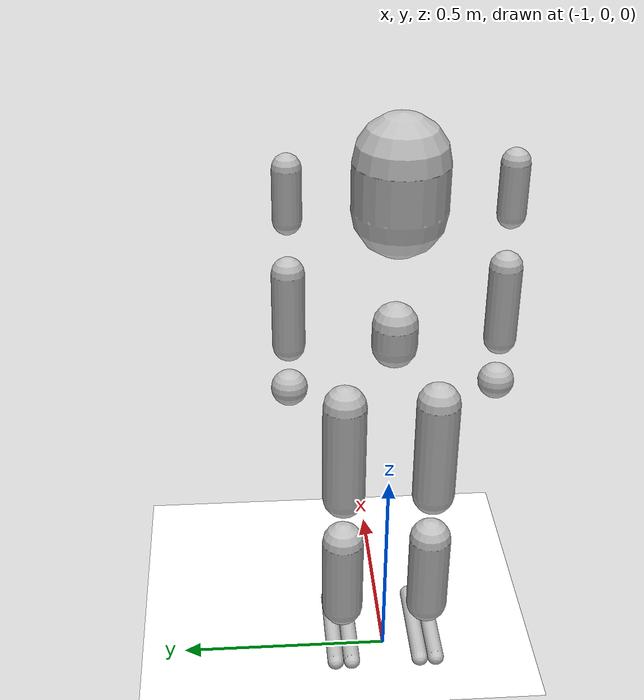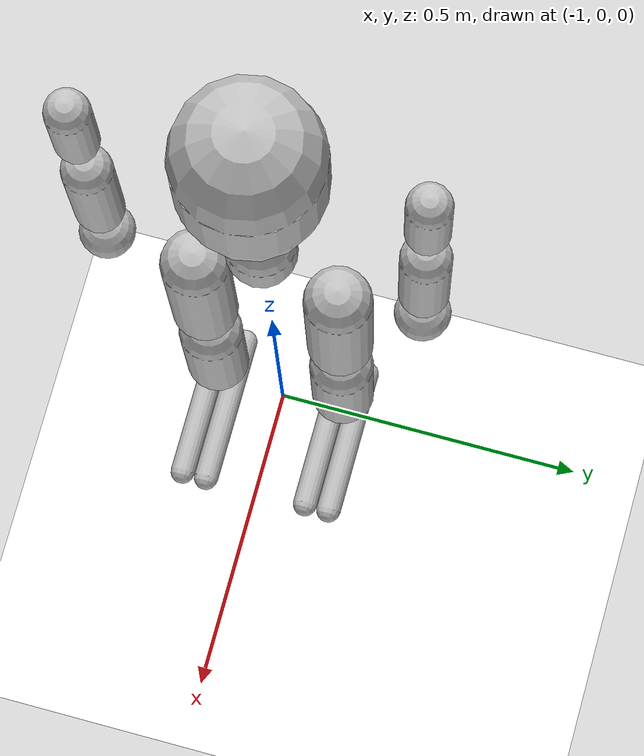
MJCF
<?xml version='1.0' encoding='UTF-8'?>
<mujoco model="GR1T1">
  <compiler angle="radian"/>
  <worldbody>
    <body name="base" pos="-1.0 0 0.94">
      <joint name="base_x" type="slide" axis="1 0 0" damping="30"/>
      <joint name="base_y" type="slide" axis="0 1 0" damping="30"/>
      <joint name="base_yaw" type="hinge" axis="0 0 1" damping="30"/>
      <inertial pos="-0.0508888 0.000109183 -0.0455794" quat="0.706855 0.707166 0.0123661 -0.0109307" mass="6.45117" diaginertia="0.0149302 0.0127972 0.00640923"/>
      <body name="l_thigh_roll" pos="-0.047999 0.105 -0.057493">
        <inertial pos="0.04163 3.4568e-05 -0.0021382" quat="0.575529 0.581908 -0.40597 0.406619" mass="1.1437" diaginertia="0.00117548 0.00100413 0.000943892"/>
        <joint name="l_hip_roll" pos="0 0 0" axis="1 0 1.221e-05" range="-0.09 0.79" actuatorfrcrange="-100 100"/>
        <body name="l_thigh_yaw" pos="0.048 0 -0.030499">
          <inertial pos="0.00018348 0.046462 -0.10389" quat="0.704251 -0.0226446 -0.0453749 0.708138" mass="3.9888" diaginertia="0.0163385 0.0100158 0.00924336"/>
          <joint name="l_hip_yaw" pos="0 0 0" axis="1.2209e-05 6.8349e-05 1" range="-0.7 0.7" actuatorfrcrange="-82.5 82.5"/>
          <body name="l_thigh_pitch" pos="0 0 -0.11">
            <inertial pos="0.0028493 -0.021688 -0.090886" quat="0.707411 -0.0125435 -0.0111264 0.706604" mass="6.369" diaginertia="0.0532352 0.0425096 0.0134363"/>
            <joint name="l_hip_pitch" pos="0 0 0" axis="0 1 -6.8349e-05" range="-1.75 0.7" actuatorfrcrange="-160 160"/>
            <geom size="0.05 0.125" pos="0 0 -0.15" type="capsule" rgba="0.75294 0.75294 0.75294 1"/>
            <body name="l_shank_pitch" pos="0 2.4606e-05 -0.36">
              <inertial pos="0.0024312 -2.9945e-05 -0.11554" quat="0.692137 0.00134576 0.00140217 0.721764" mass="2.1895" diaginertia="0.0162703 0.016117 0.00113627"/>
              <joint name="l_knee_pitch" pos="0 0 0" axis="0 1 6.8349e-05" range="-0.09 1.92" actuatorfrcrange="-160 160"/>
              <geom size="0.05 0.1" pos="0 0 -0.15" type="capsule" rgba="0.75294 0.75294 0.75294 1"/>
              <body name="l_foot_pitch" pos="0 2.3239e-05 -0.34">
                <inertial pos="1.748e-11 4.3804e-11 0" quat="1 3.42295e-05 -6.07362e-06 -2.07897e-10" mass="0.080335" diaginertia="5.1022e-06 4.3976e-06 4.188e-06"/>
                <joint name="l_ankle_pitch" pos="0 0 0" axis="0 1 6.8349e-05" range="-1.05 0.52" actuatorfrcrange="-8 8"/>
                <body name="l_foot_roll">
                  <inertial pos="0.039446 0.00035757 -0.038101" quat="-0.00087198 0.709539 -0.00177594 0.704664" mass="0.584" diaginertia="0.00271032 0.0024027 0.000369145"/>
                  <joint name="l_ankle_roll" pos="0 0 0" axis="1 0 1.221e-05" range="-0.44 0.44" actuatorfrcrange="-3 3"/>
                  <geom name="l_foot_1" size="0.02 0.12" pos="0.05 0.02 -0.035" quat="0.707105 0 0.707108 0" type="capsule" rgba="0.75294 0.75294 0.75294 1"/>
                  <geom name="l_foot_2" size="0.02 0.12" pos="0.05 -0.02 -0.035" quat="0.707105 0 0.707108 0" type="capsule" rgba="0.75294 0.75294 0.75294 1"/>
                </body>
              </body>
            </body>
          </body>
        </body>
      </body>
      <body name="r_thigh_roll" pos="-0.047999 -0.105 -0.057508">
        <inertial pos="0.0416295 3.45678e-05 -0.00213824" quat="0.57555 0.581927 -0.405942 0.406589" mass="1.14367" diaginertia="0.00117548 0.00100417 0.000943891"/>
        <joint name="r_hip_roll" pos="0 0 0" axis="1 0 1.221e-05" range="-0.79 0.09" actuatorfrcrange="-100 100"/>
        <body name="r_thigh_yaw" pos="0.048 0 -0.030499">
          <inertial pos="-0.00159762 -0.0464482 -0.103899" quat="0.709186 -0.0420808 -0.0194028 0.703497" mass="3.98882" diaginertia="0.0163388 0.0100142 0.00924469"/>
          <joint name="r_hip_yaw" pos="0 0 0" axis="1.2209e-05 6.8349e-05 1" range="-0.7 0.7" actuatorfrcrange="-82.5 82.5"/>
          <body name="r_thigh_pitch" pos="0 0 -0.11">
            <inertial pos="0.002842 0.0217009 -0.0919987" quat="0.706586 -0.0113774 -0.0126258 0.707423" mass="6.36895" diaginertia="0.0532349 0.0424818 0.0134641"/>
            <joint name="r_hip_pitch" pos="0 0 0" axis="0 1 6.8349e-05" range="-1.75 0.7" actuatorfrcrange="-160 160"/>
            <geom size="0.05 0.125" pos="0 0 -0.15" type="capsule" rgba="0.752941 0.752941 0.752941 1"/>
            <body name="r_shank_pitch" pos="0 2.4606e-05 -0.36">
              <inertial pos="0.00236658 4.56188e-05 -0.115532" quat="0.71872 0.00154106 0.00120241 0.695296" mass="2.18947" diaginertia="0.0162708 0.0161183 0.00113536"/>
              <joint name="r_knee_pitch" pos="0 0 0" axis="0 1 -6.8349e-05" range="-0.09 1.92" actuatorfrcrange="-160 160"/>
              <geom size="0.05 0.1" pos="0 0 -0.15" type="capsule" rgba="0.752941 0.752941 0.752941 1"/>
              <body name="r_foot_pitch" pos="0 2.3239e-05 -0.34">
                <inertial pos="1.75705e-11 4.40342e-11 0" quat="1 3.42336e-05 -6.07409e-06 -2.07938e-10" mass="0.0799219" diaginertia="5.11122e-06 4.40004e-06 4.17954e-06"/>
                <joint name="r_ankle_pitch" pos="0 0 0" axis="0 1 6.8349e-05" range="-1.05 0.52" actuatorfrcrange="-8 8"/>
                <body name="r_foot_roll">
                  <inertial pos="0.043909 -0.00032475 -0.039419" quat="0.000727105 0.710094 0.00155959 0.704104" mass="0.58089" diaginertia="0.00280098 0.0024886 0.000368482"/>
                  <joint name="r_ankle_roll" pos="0 0 0" axis="1 0 1.221e-05" range="-0.44 0.44" actuatorfrcrange="-3 3"/>
                  <geom name="r_foot_1" size="0.02 0.12" pos="0.05 0.02 -0.035" quat="0.707105 0 0.707108 0" type="capsule" rgba="0.75294 0.75294 0.75294 1"/>
                  <geom name="r_foot_2" size="0.02 0.12" pos="0.05 -0.02 -0.035" quat="0.707105 0 0.707108 0" type="capsule" rgba="0.75294 0.75294 0.75294 1"/>
                </body>
              </body>
            </body>
          </body>
        </body>
      </body>
      <body name="waist_yaw" pos="0 0 0.0065">
        <inertial pos="-0.010388 -0.00169636 0.0224709" quat="8.03475e-05 0.752953 -6.91813e-06 0.658075" mass="0.37886" diaginertia="0.000387148 0.000354992 0.000193448"/>
        <joint name="waist_yaw" pos="0 0 0" axis="-1.221e-05 -6.8349e-05 1" range="-1.05 1.05" actuatorfrcrange="-82.5 82.5"/>
        <geom size="0.05 0.025" pos="0 0 -0.05" type="capsule" rgba="0.752941 0.752941 0.752941 1"/>
        <body name="waist_pitch" pos="0 0 0.055">
          <inertial pos="0.00229173 -0.00229364 0.0425378" quat="0.998452 -0.0194486 0.0162447 0.0495079" mass="4.40328" diaginertia="0.00487449 0.00487146 0.00355351"/>
          <joint name="waist_pitch" pos="0 0 0" axis="0 1 -6.8349e-05" range="-0.52 1.22" actuatorfrcrange="-82.5 82.5"/>
          <body name="waist_roll" pos="0 0 0.085">
            <inertial pos="-0.00982804 -1.2954e-05 0.160653" quat="0.999997 1.84368e-05 -0.00260593 -4.00255e-05" mass="7.34393" diaginertia="0.0305266 0.0217567 0.0136783"/>
            <joint name="waist_roll" pos="0 0 0" axis="1 0 1.221e-05" range="-0.7 0.7" actuatorfrcrange="-82.5 82.5"/>
            <geom size="0.1 0.05" pos="0 0 0.15" type="capsule" rgba="0.752941 0.752941 0.752941 1"/>
            <body name="head_yaw" pos="0 -2.3548e-05 0.34453">
              <inertial pos="0.000255273 -1.43143e-05 0.0571737" quat="0.698659 0.111628 0.112302 0.697713" mass="0.168425" diaginertia="0.00013241 0.000126266 6.86988e-05"/>
              <joint name="head_yaw" pos="0 0 0" axis="-1.221e-05 -6.8349e-05 1" range="-2.71 2.71" actuatorfrcrange="-10.2 10.2"/>
              <body name="head_roll" pos="0 0 0.1225">
                <inertial pos="-0.000539717 0.00299723 -0.00194711" quat="0.498775 0.509039 0.50481 0.487104" mass="0.0189574" diaginertia="5.66154e-06 3.71917e-06 3.07146e-06"/>
                <joint name="head_roll" pos="0 0 0" axis="1 0 1.221e-05" range="-0.35 0.35" actuatorfrcrange="-3.95 3.95"/>
                <body name="head_pitch">
                  <inertial pos="0.0179937 0.000157203 -0.0107884" quat="-0.00317787 0.890883 0.0047882 0.454197" mass="0.315067" diaginertia="0.00129389 0.00105273 0.000852366"/>
                  <joint name="head_pitch" pos="0 0 0" axis="0 1 6.8349e-05" range="-0.52 0.35" actuatorfrcrange="-3.95 3.95"/>
                </body>
              </body>
            </body>
            <body name="l_upper_arm_pitch" pos="0 0.12661 0.21727" quat="0.976289 0.216473 0 0">
              <inertial pos="0.00515733 0.0588337 0.000122944" quat="0.999793 0.0203364 -0.000117253 0.0011083" mass="0.777394" diaginertia="0.000546411 0.000340581 0.000319359"/>
              <joint name="l_shoulder_pitch" pos="0 0 0" axis="0 1 0" range="-2.79 1.92" actuatorfrcrange="-38 38"/>
              <body name="l_upper_arm_roll" pos="0 0.067 0" quat="0.976289 -0.216473 0 0">
                <inertial pos="0.0260055 0.0238305 -0.0272078" quat="0.906707 0.298574 0.228734 -0.190834" mass="0.084111" diaginertia="9.66711e-05 8.99184e-05 2.54726e-05"/>
                <joint name="l_shoulder_roll" pos="0 0 0" axis="1 0 -1.221e-05" range="-0.57 3.27" actuatorfrcrange="-38 38"/>
                <body name="l_upper_arm_yaw" pos="0 0.040004 -0.057502">
                  <inertial pos="-4.12427e-05 0.00135031 -0.101007" quat="0.706543 0.0248514 -0.0268343 0.706724" mass="0.78993" diaginertia="0.000480863 0.000420363 0.000315608"/>
                  <joint name="l_shoulder_yaw" pos="0 0 0" axis="1.221e-05 6.8349e-05 1" range="-2.97 2.97" actuatorfrcrange="-30 30"/>
                  <geom size="0.03 0.055" pos="0 0 -0.05" type="capsule" rgba="0.752941 0.752941 0.752941 1"/>
                  <body name="l_lower_arm_pitch" pos="0 1.28869e-05 -0.188546">
                    <inertial pos="2.60519e-07 0.0196937 -0.0210902" quat="0.675254 -0.209845 0.209837 0.675252" mass="0.0553958" diaginertia="2.92256e-05 2.63267e-05 1.3293e-05"/>
                    <joint name="l_elbow_pitch" pos="0 0 0" axis="0 1 6.83491e-05" range="-2.27 2.27" actuatorfrcrange="-30 30"/>
                    <body name="l_hand_yaw" pos="0 0 -0.0405043">
                      <inertial pos="-4.20996e-05 0.000336116 -0.0559829" quat="0.999784 -0.0189715 -0.00676208 0.00509819" mass="0.606076" diaginertia="0.000747266 0.000709257 0.000280769"/>
                      <joint name="l_wrist_yaw" pos="0 0 0" axis="1.221e-05 6.83491e-05 1" range="-2.97 2.97" actuatorfrcrange="-10.2 10.2"/>
                      <geom size="0.035 0.085" pos="0 0 -0.08" type="capsule" rgba="0.752941 0.752941 0.752941 1"/>
                      <body name="l_hand_roll" pos="0 1.3775e-05 -0.20155">
                        <inertial pos="-1.5483e-08 -0.00044846 -1.9394e-08" quat="0 0.7071 0 0.707114" mass="0.0054473" diaginertia="3.6036e-07 3.5527e-07 7.344e-08"/>
                        <joint name="l_wrist_roll" pos="0 0 0" axis="1 0 -1.2211e-05" range="-0.61 0.61" actuatorfrcrange="-3.95 3.95"/>
                        <body name="l_hand_pitch">
                          <inertial pos="0.0071289 -0.0026192 -0.078567" quat="0.298548 0.646339 0.631172 0.307795" mass="0.5239" diaginertia="0.000345825 0.000211684 0.000195941"/>
                          <joint name="l_wrist_pitch" pos="0 0 0" axis="0 1 6.8349e-05" range="-0.61 0.61" actuatorfrcrange="-3.95 3.95"/>
                          <geom size="0.04" pos="0 0 -0.07" rgba="0.75294 0.75294 0.75294 1"/>
                        </body>
                      </body>
                    </body>
                  </body>
                </body>
              </body>
            </body>
            <body name="r_upper_arm_pitch" pos="0 -0.12664 0.21725" quat="0.976303 -0.216409 0 0">
              <inertial pos="0.00515735 -0.0587916 0.000122944" quat="0.999675 -0.0254775 -0.000125407 -0.000494276" mass="0.777391" diaginertia="0.00054641 0.000340601 0.00031934"/>
              <joint name="r_shoulder_pitch" pos="0 0 0" axis="0 1 0" range="-2.79 1.92" actuatorfrcrange="-38 38"/>
              <body name="r_upper_arm_roll" pos="0 -0.067 0" quat="0.976303 0.216409 0 0">
                <inertial pos="0.0260059 -0.0238264 -0.0272109" quat="0.906733 -0.298529 0.228698 0.190821" mass="0.0840989" diaginertia="9.66585e-05 8.99068e-05 2.54689e-05"/>
                <joint name="r_shoulder_roll" pos="0 0 0" axis="1 0 -1.221e-05" range="-3.27 0.57" actuatorfrcrange="-38 38"/>
                <body name="r_upper_arm_yaw" pos="0 -0.039996 -0.057473">
                  <inertial pos="0.00017083 -0.00124148 -0.100981" quat="0.712176 -0.02561 0.0250075 0.701088" mass="0.78993" diaginertia="0.000481112 0.000420147 0.000315576"/>
                  <joint name="r_shoulder_yaw" pos="0 0 0" axis="1.221e-05 6.8349e-05 1" range="-2.97 2.97" actuatorfrcrange="-30 30"/>
                  <geom size="0.03 0.055" pos="0 0 -0.05" type="capsule" rgba="0.752941 0.752941 0.752941 1"/>
                  <body name="r_lower_arm_pitch" pos="0 1.28859e-05 -0.18853">
                    <inertial pos="2.54538e-07 -0.0196908 -0.0210929" quat="0.675237 0.209883 -0.209892 0.67524" mass="0.0553958" diaginertia="2.92256e-05 2.63267e-05 1.3293e-05"/>
                    <joint name="r_elbow_pitch" pos="0 0 0" axis="0 1 -6.835e-05" range="-2.27 2.27" actuatorfrcrange="-30 30"/>
                    <body name="r_hand_yaw" pos="0 0 -0.0405">
                      <inertial pos="0.000158044 -0.000478822 -0.0559415" quat="0.999772 0.019131 0.00724385 -0.00608553" mass="0.606076" diaginertia="0.000748132 0.000708413 0.000280748"/>
                      <joint name="r_wrist_yaw" pos="0 0 0" axis="1.221e-05 6.835e-05 1" range="-2.97 2.97" actuatorfrcrange="-10.2 10.2"/>
                      <geom size="0.035 0.085" pos="0 0 -0.08" type="capsule" rgba="0.752941 0.752941 0.752941 1"/>
                      <body name="r_hand_roll" pos="0 1.3775e-05 -0.20153">
                        <inertial pos="1.5545e-08 0.00044846 4.1938e-08" quat="0 0.707105 0 0.707108" mass="0.0054473" diaginertia="3.6036e-07 3.5527e-07 7.344e-08"/>
                        <joint name="r_wrist_roll" pos="0 0 0" axis="1 0 1.221e-05" range="-0.61 0.61" actuatorfrcrange="-3.95 3.95"/>
                        <body name="r_hand_pitch">
                          <inertial pos="0.0060733 0.0018907 -0.084578" quat="0.647336 -0.27161 -0.257721 0.6639" mass="0.53221" diaginertia="0.000319947 0.000196296 0.000182477"/>
                          <joint name="r_wrist_pitch" pos="0 0 0" axis="0 1 -6.835e-05" range="-0.61 0.61" actuatorfrcrange="-3.95 3.95"/>
                          <geom size="0.04" pos="0 0 -0.07" rgba="0.75294 0.75294 0.75294 1"/>
                        </body>
                      </body>
                    </body>
                  </body>
                </body>
              </body>
            </body>
          </body>
        </body>
      </body>
    </body>
    <geom name="ground_plane" type="plane" size="5 5 10" material="MatPlane" rgba="1 1 1 1"/>
    <light pos="0 0 1000" castshadow="true"/>
  </worldbody>
  <asset>
    <texture name="texplane" builtin="checker" height="512" width="512" rgb1=".2 .3 .4" rgb2=".1 .15 .2" type="2d"/>
    <material name="MatPlane" reflectance="0.5" shininess="0.01" specular="0.1" texrepeat="1 1" texture="texplane" texuniform="true"/>
  </asset>
</mujoco>
